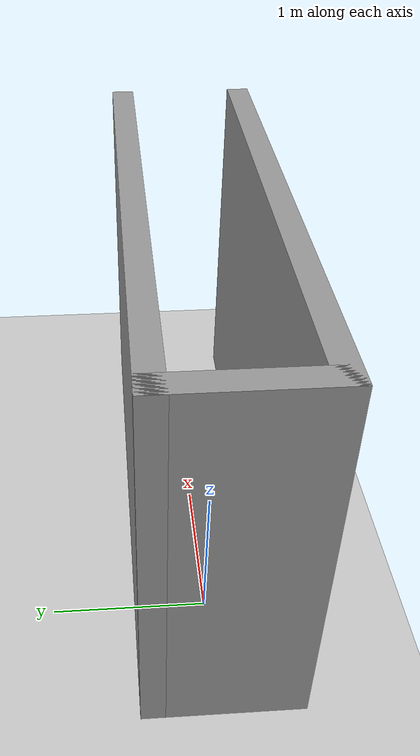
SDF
<sdf version="1.4">
  <world name="default">

    <scene>
      <ambient>0.4 0.4 0.4 1</ambient>
      <background>0.7 0.7 0.7 1</background>
      <shadows>true</shadows>
    </scene>

    <!-- A global light source -->
    <include>
      <uri>model://sun</uri>
    </include>

    <!-- A ground plane -->
    <include>
      <uri>model://ground_plane</uri>
    </include>

    <physics type="ode">
      <real_time_update_rate>1000.0</real_time_update_rate>
      <max_step_size>0.001</max_step_size>
      <real_time_factor>1</real_time_factor>
      <ode>
        <solver>
          <type>quick</type>
          <iters>150</iters>
          <precon_iters>0</precon_iters>
          <sor>1.400000</sor>
          <use_dynamic_moi_rescaling>1</use_dynamic_moi_rescaling>
        </solver>
        <constraints>
          <cfm>0.00001</cfm>
          <erp>0.2</erp>
          <contact_max_correcting_vel>2000.000000</contact_max_correcting_vel>
          <contact_surface_layer>0.01000</contact_surface_layer>
        </constraints>
      </ode>
    </physics>

  <model name='3_5_no_k'>
    <pose frame=''>0.965 -0.035 0 0 -0 0</pose>
    <link name='Wall_10'>
      <collision name='Wall_10_Collision'>
        <geometry>
          <box>
            <size>3.5 0.15 2.5</size>
          </box>
        </geometry>
        <pose frame=''>0 0 1.25 0 -0 0</pose>
      </collision>
      <visual name='Wall_10_Visual'>
        <pose frame=''>0 0 1.25 0 -0 0</pose>
        <geometry>
          <box>
            <size>3.5 0.15 2.5</size>
          </box>
        </geometry>
        <material>
          <script>
            <uri>file://media/materials/scripts/gazebo.material</uri>
            <name>Gazebo/Grey</name>
          </script>
          <ambient>1 1 1 1</ambient>
        </material>
        <meta>
          <layer>0</layer>
        </meta>
      </visual>
      <pose frame=''>0 -0.425 0 0 -0 0</pose>
    </link>
    <link name='Wall_2'>
      <collision name='Wall_2_Collision'>
        <geometry>
          <box>
            <size>1 0.15 2.5</size>
          </box>
        </geometry>
        <pose frame=''>0 0 1.25 0 -0 0</pose>
      </collision>
      <visual name='Wall_2_Visual'>
        <pose frame=''>0 0 1.25 0 -0 0</pose>
        <geometry>
          <box>
            <size>1 0.15 2.5</size>
          </box>
        </geometry>
        <material>
          <script>
            <uri>file://media/materials/scripts/gazebo.material</uri>
            <name>Gazebo/Grey</name>
          </script>
          <ambient>1 1 1 1</ambient>
        </material>
        <meta>
          <layer>0</layer>
        </meta>
      </visual>
      <pose frame=''>-1.675 0 0 0 -0 -1.5708</pose>
    </link>
    <link name='Wall_8'>
      <collision name='Wall_8_Collision'>
        <geometry>
          <box>
            <size>3.5 0.15 2.5</size>
          </box>
        </geometry>
        <pose frame=''>0 0 1.25 0 -0 0</pose>
      </collision>
      <visual name='Wall_8_Visual'>
        <pose frame=''>0 0 1.25 0 -0 0</pose>
        <geometry>
          <box>
            <size>3.5 0.15 2.5</size>
          </box>
        </geometry>
        <material>
          <script>
            <uri>file://media/materials/scripts/gazebo.material</uri>
            <name>Gazebo/Grey</name>
          </script>
          <ambient>1 1 1 1</ambient>
        </material>
        <meta>
          <layer>0</layer>
        </meta>
      </visual>
      <pose frame=''>0 0.425 0 0 -0 0</pose>
    </link>
    <static>1</static>
  </model>

  </world>

</sdf>
